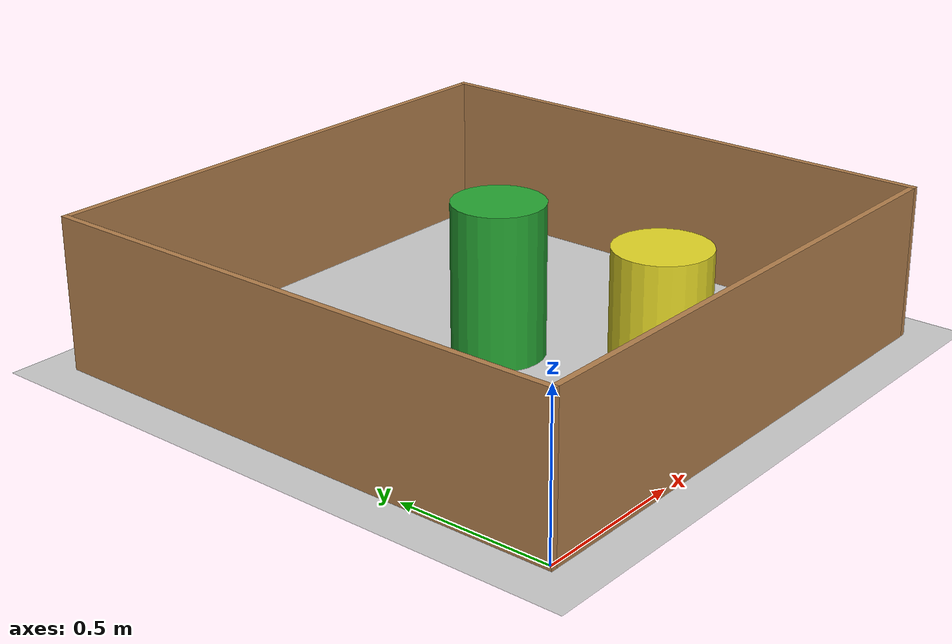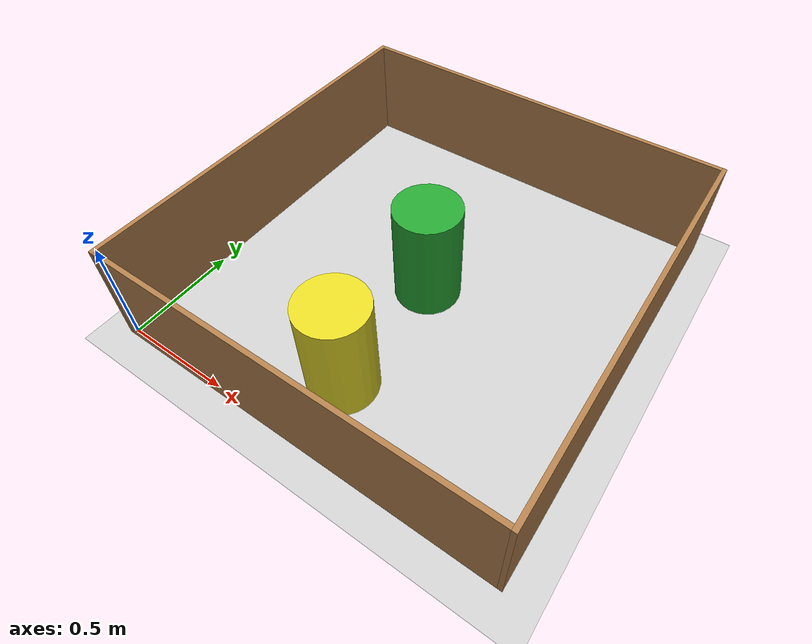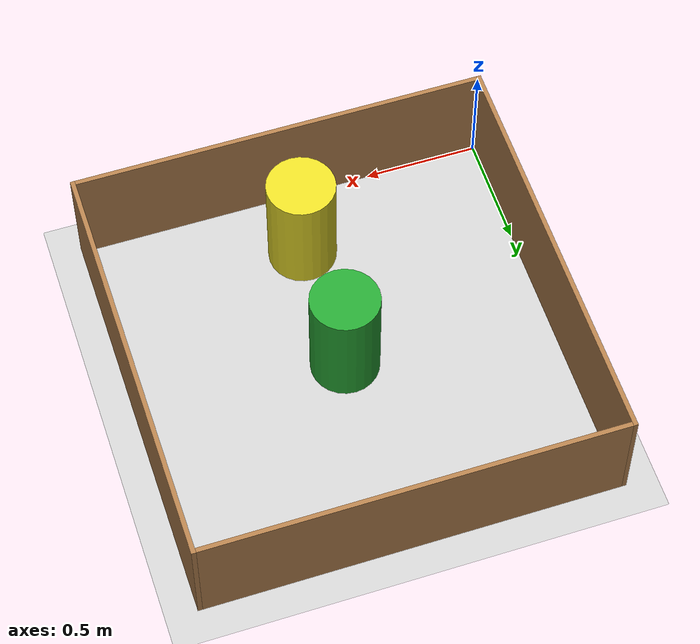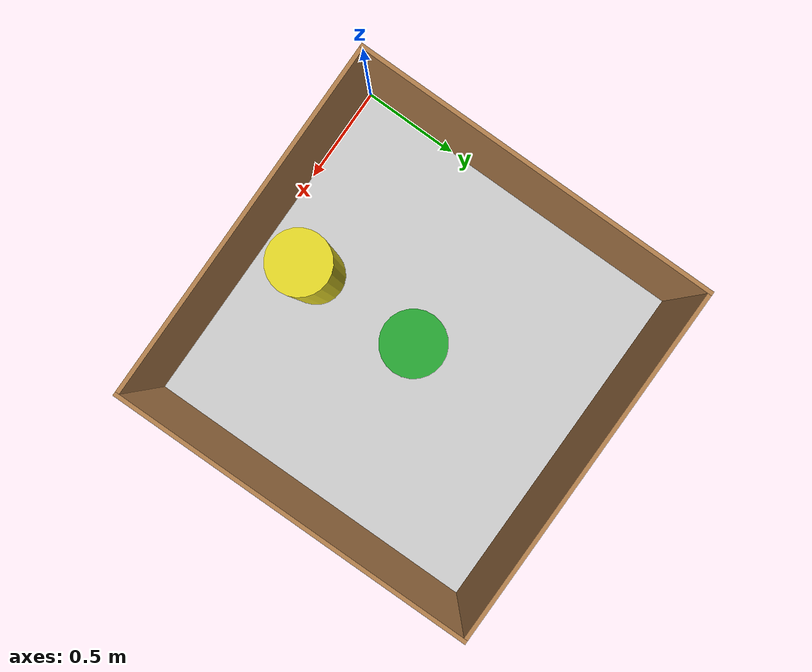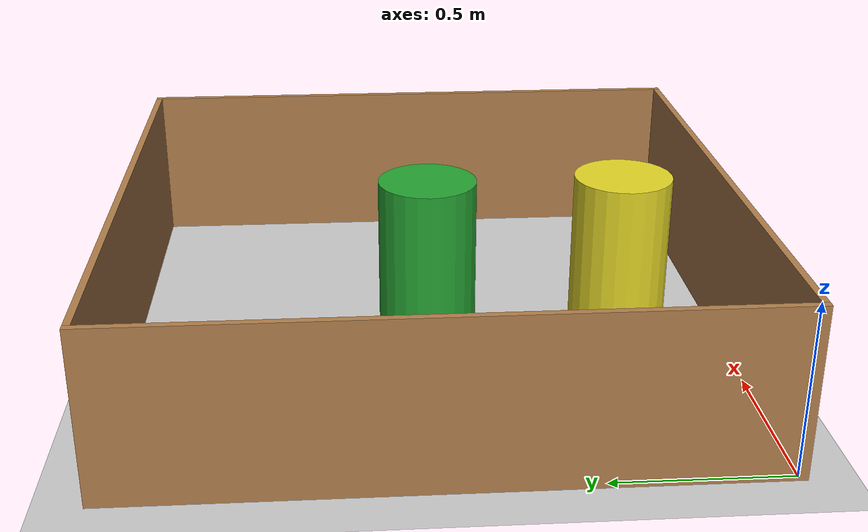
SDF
<sdf version='1.4'>
  <world name='default'>
    <!-- A global light source -->
    <include>
      <uri>model://sun</uri>
    </include>

    <!-- A ground plane -->
    <include>
      <uri>model://ground_plane</uri>
    </include>

    <physics type="ode">
      <real_time_update_rate>500.0</real_time_update_rate>
      <max_step_size>0.002</max_step_size>
      <real_time_factor>1</real_time_factor>
      <ode>
        <solver>
          <type>quick</type>
          <iters>150</iters>
          <precon_iters>0</precon_iters>
          <sor>1.400000</sor>
          <use_dynamic_moi_rescaling>1</use_dynamic_moi_rescaling>
        </solver>
        <constraints>
          <cfm>0.00001</cfm>
          <erp>0.2</erp>
          <contact_max_correcting_vel>2000.000000</contact_max_correcting_vel>
          <contact_surface_layer>0.01000</contact_surface_layer>
        </constraints>
      </ode>
    </physics>

    <!-- Load model -->
    <include>
      <uri>model://eced3901_lab5</uri>
    </include>

    <model name='obstacle'>
      <pose frame=''>0 0 0 0 -0 0</pose>
      <link name='obstacle'>
        <collision name='obstacle_1'>
          <pose>0.9 0.9 0.25 0 0 0</pose>
          <geometry>
            <cylinder>
              <radius>0.15</radius>
              <length>0.5</length>
            </cylinder>
          </geometry>
          <max_contacts>10</max_contacts>
          <surface>
            <bounce/>
            <friction>
              <ode/>
            </friction>
            <contact>
              <ode/>
            </contact>
          </surface>
        </collision>

        <visual name='obstacle_1'>
          <pose>0.9 0.9 0.25 0 0 0</pose>
          <geometry>
            <cylinder>
              <radius>0.15</radius>
              <length>0.5</length>
            </cylinder>
          </geometry>
          <material>
            <script>
              <uri>file://media/materials/scripts/gazebo.material</uri>
              <name>Gazebo/Green</name>
            </script>
          </material>
        </visual>

        <collision name='obstacle_2'>
          <pose>0.9 0.3 0.25 0 0 0</pose>
          <geometry>
            <cylinder>
              <radius>0.15</radius>
              <length>0.5</length>
            </cylinder>
          </geometry>
          <max_contacts>10</max_contacts>
          <surface>
            <bounce/>
            <friction>
              <ode/>
            </friction>
            <contact>
              <ode/>
            </contact>
          </surface>
        </collision>

        <visual name='obstacle_2'>
          <pose>0.9 0.3 0.25 0 0 0</pose>
          <geometry>
            <cylinder>
              <radius>0.15</radius>
              <length>0.5</length>
            </cylinder>
          </geometry>
          <material>
            <script>
              <uri>file://media/materials/scripts/gazebo.material</uri>
              <name>Gazebo/DarkYellow</name>
            </script>
          </material>
        </visual>
      </link>
      <static>1</static>
    </model>

    <scene>
      <ambient>0.4 0.4 0.4 1</ambient>
      <background>0.7 0.7 0.7 1</background>
      <shadows>true</shadows>
    </scene>

    <gui fullscreen='0'>
      <camera name='user_camera'>
        <pose>0.9 0.9 5.0 0 1.5708 1.5708</pose>
        <view_controller>orbit</view_controller>
      </camera>
    </gui>
  </world>
</sdf>

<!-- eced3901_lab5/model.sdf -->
<sdf version='1.6'>
  <model name='eced3901_lab5'>
    <pose frame=''>0 0 0 0 -0 0</pose>
    <link name='Wall_0'>
      <collision name='Wall_0_Collision'>
        <geometry>
          <box>
            <size>1.8 0.02 0.5</size>
          </box>
        </geometry>
        <pose frame=''>0 0 0.25 0 -0 0</pose>
      </collision>
      <visual name='Wall_0_Visual'>
        <pose frame=''>0 0 0.25 0 -0 0</pose>
        <geometry>
          <box>
            <size>1.8 0.02 0.5</size>
          </box>
        </geometry>
        <material>
          <script>
            <uri>file://media/materials/scripts/gazebo.material</uri>
            <name>Gazebo/Wood</name>
          </script>
          <ambient>1 1 1 1</ambient>
        </material>
      </visual>
      <pose frame=''>0.9 1.81 0 0 -0 0</pose>
    </link>
    <link name='Wall_2'>
      <collision name='Wall_2_Collision'>
        <geometry>
          <box>
            <size>1.84 0.02 0.5</size>
          </box>
        </geometry>
        <pose frame=''>0 0 0.25 0 -0 0</pose>
      </collision>
      <visual name='Wall_2_Visual'>
        <pose frame=''>0 0 0.25 0 -0 0</pose>
        <geometry>
          <box>
            <size>1.84 0.02 0.5</size>
          </box>
        </geometry>
        <material>
          <script>
            <uri>file://media/materials/scripts/gazebo.material</uri>
            <name>Gazebo/Wood</name>
          </script>
          <ambient>1 1 1 1</ambient>
        </material>
      </visual>
      <pose frame=''>-0.01 0.9 0 0 0 -1.5708</pose>
    </link>
    <link name='Wall_3'>
      <collision name='Wall_3_Collision'>
        <geometry>
          <box>
            <size>1.8 0.02 0.5</size>
          </box>
        </geometry>
        <pose frame=''>0 0 0.25 0 -0 0</pose>
      </collision>
      <visual name='Wall_3_Visual'>
        <pose frame=''>0 0 0.25 0 -0 0</pose>
        <geometry>
          <box>
            <size>1.8 0.02 0.5</size>
          </box>
        </geometry>
        <material>
          <script>
            <uri>file://media/materials/scripts/gazebo.material</uri>
            <name>Gazebo/Wood</name>
          </script>
          <ambient>1 1 1 1</ambient>
        </material>
      </visual>
      <pose frame=''>0.9 -0.01 0 0 -0 0</pose>
    </link>
    <link name='Wall_4'>
      <collision name='Wall_4_Collision'>
        <geometry>
          <box>
            <size>1.84 0.02 0.5</size>
          </box>
        </geometry>
        <pose frame=''>0 0 0.25 0 -0 0</pose>
      </collision>
      <visual name='Wall_4_Visual'>
        <pose frame=''>0 0 0.25 0 -0 0</pose>
        <geometry>
          <box>
            <size>1.84 0.02 0.5</size>
          </box>
        </geometry>
        <material>
          <script>
            <uri>file://media/materials/scripts/gazebo.material</uri>
            <name>Gazebo/Wood</name>
          </script>
          <ambient>1 1 1 1</ambient>
        </material>
      </visual>
      <pose frame=''>1.81 0.9 0 0 -0 1.5708</pose>
    </link>
    <static>1</static>
  </model>
</sdf>
